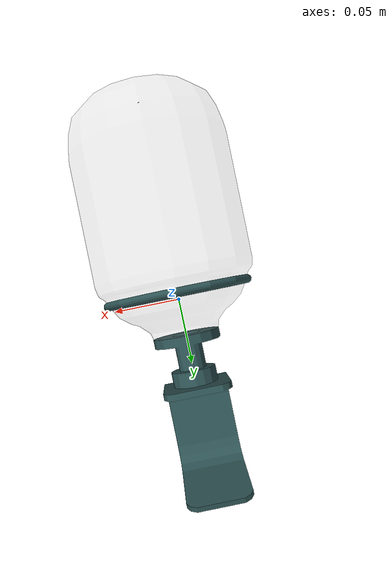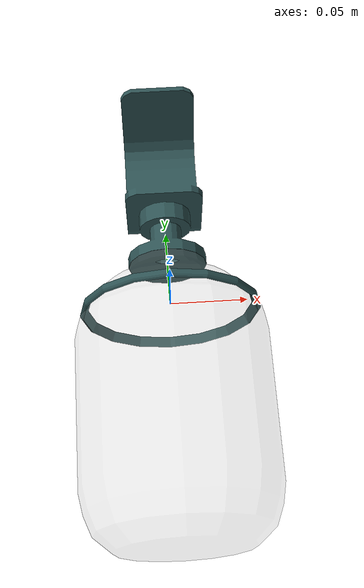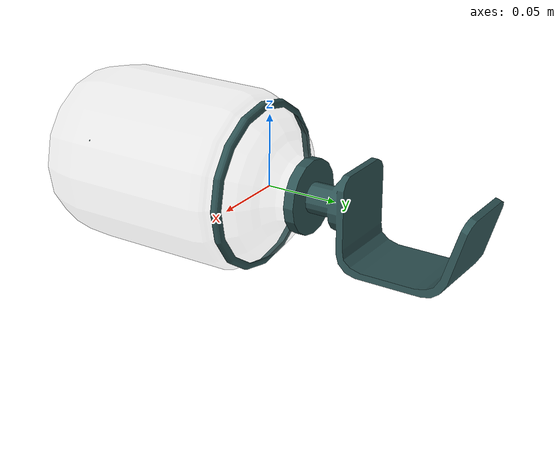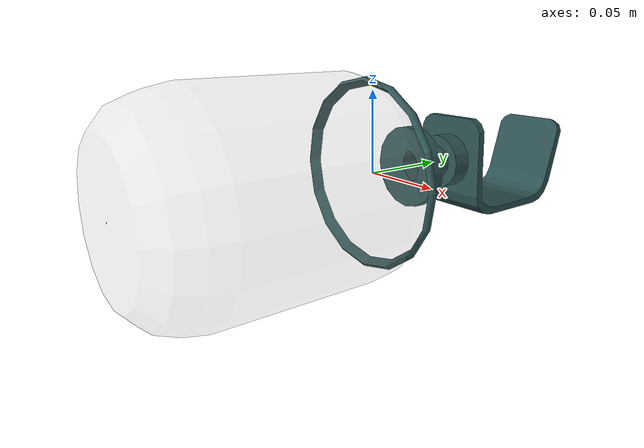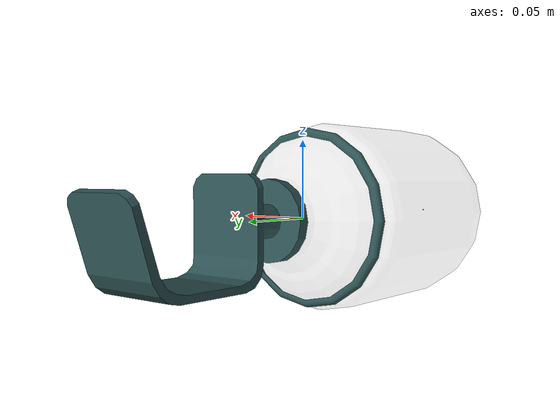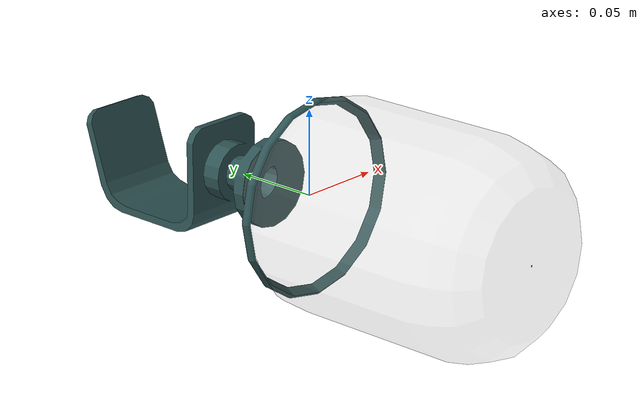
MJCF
<mujoco model="Soap_Bottle_10">
  <default>
    <default class="visual">
      <geom group="2" type="mesh" contype="0" conaffinity="0"/>
    </default>
    <default class="collision">
      <geom group="3" type="mesh"/>
    </default>
  </default>
  <asset>
    <material name="Soap_Bottle_Primary5_Mat" specular="0.5" shininess="0.5" rgba="0.6764706 0.6764706 0.6764706 0.1764706"/>
    <material name="Soap_Bottle_Secondary5_Mat" specular="0.5" shininess="0.5" rgba="0.1803922 0.3254902 0.3294118 1.0"/>
    <material name="Soap_Bottle_Tube_Mat" specular="0.5" shininess="0.5" rgba="0.6691177 0.6691177 0.6691177 0"/>
    <material name="Soap_Bottle_Filling1_mat" specular="0.5" shininess="0.5" rgba="0.1665225 0.5277532 0.6470588 0.416"/>
    <mesh file="Soap_Bottle_10_0.obj"/>
    <mesh file="Soap_Bottle_10_1.obj"/>
    <mesh file="Soap_Bottle_10_2.obj"/>
    <mesh file="Soap_Bottle_10_3.obj"/>
    <mesh file="Soap_Bottle_10_collision_0.obj"/>
    <mesh file="Soap_Bottle_10_collision_1.obj"/>
    <mesh file="Soap_Bottle_10_collision_2.obj"/>
    <mesh file="Soap_Bottle_10_collision_3.obj"/>
    <mesh file="Soap_Bottle_10_collision_4.obj"/>
  </asset>
  <worldbody>
    <body name="Soap_Bottle_10">
      <geom mesh="Soap_Bottle_10_0" material="Soap_Bottle_Filling1_mat" class="visual"/>
      <geom mesh="Soap_Bottle_10_1" material="Soap_Bottle_Tube_Mat" class="visual"/>
      <geom mesh="Soap_Bottle_10_2" material="Soap_Bottle_Secondary5_Mat" class="visual"/>
      <geom mesh="Soap_Bottle_10_3" material="Soap_Bottle_Primary5_Mat" class="visual"/>
      <geom mesh="Soap_Bottle_10_collision_0" rgba="0.8374065663545105 0.6739074044397533 0.9547047066388087 1" class="collision"/>
      <geom mesh="Soap_Bottle_10_collision_1" rgba="0.8684873313651637 0.029075340852965703 0.2565912195882917 1" class="collision"/>
      <geom mesh="Soap_Bottle_10_collision_2" rgba="0.1976140658540272 0.5497829725852081 0.6204713859316427 1" class="collision"/>
      <geom mesh="Soap_Bottle_10_collision_3" rgba="0.6059458522616473 0.45446738120101327 0.2739864438085923 1" class="collision"/>
      <geom mesh="Soap_Bottle_10_collision_4" rgba="0.41325174371394824 0.8010107420503522 0.6553549545062011 1" class="collision"/>
    </body>
  </worldbody>
</mujoco>
